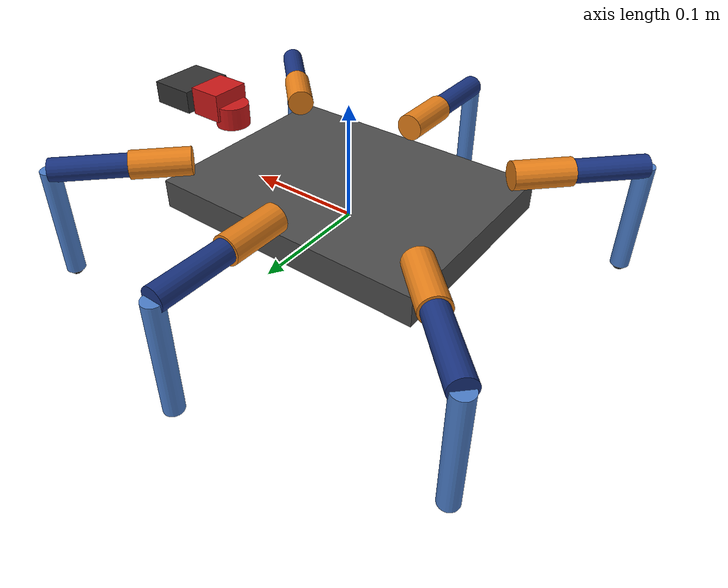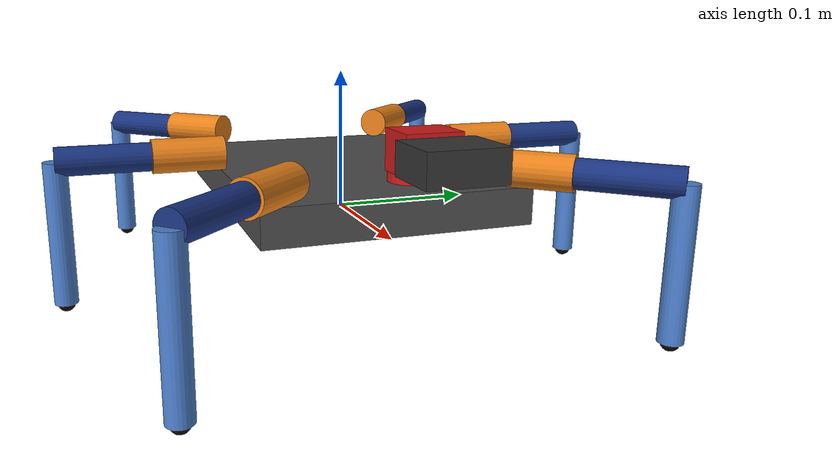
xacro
<?xml version="1.0"?>
<robot xmlns:xacro="http://www.ros.org/wiki/xacro" name="nox">

  <!-- Include sub-files -->
  <xacro:include filename="$(find rumblex_description)/urdf/materials.xacro"/>
  <xacro:include filename="$(find rumblex_description)/urdf/leg.xacro"/>
  <xacro:include filename="$(find rumblex_description)/urdf/ros2_control.xacro"/>

  <!-- ================================================================
       Robot dimensions from anatomy.yaml
       ================================================================ -->
  <xacro:property name="coxa_length"  value="0.050"/>
  <xacro:property name="femur_length" value="0.063"/>
  <xacro:property name="tibia_length" value="0.099"/>
  <xacro:property name="coxa_height"  value="0.045"/>

  <!-- Body visual approximation -->
  <xacro:property name="body_length"  value="0.240"/>
  <xacro:property name="body_width"   value="0.180"/>
  <xacro:property name="body_height"  value="0.025"/>
  <xacro:property name="body_mass"    value="0.400"/>

  <!-- ================================================================
       Gazebo plugin (for simulation with gz_ros2_control)
       ================================================================ -->
  <xacro:arg name="use_sim" default="false"/>

  <xacro:if value="$(arg use_sim)">
    <gazebo>
      <plugin filename="gz_ros2_control-system"
              name="gz_ros2_control::GazeboSimROS2ControlPlugin">
        <parameters>$(find rumblex_gazebo)/config/nox/joint_controllers.yaml</parameters>
      </plugin>
    </gazebo>
    <xacro:rumblex_ros2_control/>
  </xacro:if>

  <!-- ================================================================
       BASE LINK (body platform)
       ================================================================ -->
  <link name="base_link">
    <visual>
      <origin xyz="0 0 0.020" rpy="0 0 0"/>
      <geometry>
        <box size="${body_length} ${body_width} ${body_height}"/>
      </geometry>
      <material name="dark_gray"/>
    </visual>
    <collision>
      <origin xyz="0 0 0.020" rpy="0 0 0"/>
      <geometry>
        <box size="${body_length} ${body_width} ${body_height}"/>
      </geometry>
    </collision>
    <inertial>
      <origin xyz="0 0 0.020"/>
      <mass value="${body_mass}"/>
      <inertia ixx="${body_mass * (body_width*body_width + body_height*body_height) / 12}"
               ixy="0" ixz="0"
               iyy="${body_mass * (body_length*body_length + body_height*body_height) / 12}"
               iyz="0"
               izz="${body_mass * (body_length*body_length + body_width*body_width) / 12}"/>
    </inertial>
  </link>

  <gazebo reference="base_link">
    <material>
      <ambient>0.3 0.3 0.3 1</ambient>
      <diffuse>0.3 0.3 0.3 1</diffuse>
    </material>
  </gazebo>

  <!-- BNO055 IMU mounted on bottom plate, X-axis aligned with robot X -->
  <joint name="imu_joint" type="fixed">
    <parent link="base_link"/>
    <child link="imu_link"/>
    <origin xyz="0 0 0.0075" rpy="0 0 0"/>
  </joint>

  <link name="imu_link">
    <visual>
      <geometry>
        <box size="0.020 0.027 0.004"/>
      </geometry>
      <material name="dark_grey">
        <color rgba="0.15 0.15 0.15 1"/>
      </material>
    </visual>
    <collision>
      <geometry>
        <box size="0.020 0.027 0.004"/>
      </geometry>
    </collision>
    <inertial>
      <mass value="0.003"/>
      <inertia ixx="1.0e-07" ixy="0" ixz="0"
               iyy="1.0e-07" iyz="0"
               izz="1.0e-07"/>
    </inertial>
  </link>

  <gazebo reference="imu_link">
    <material>
      <ambient>0.15 0.15 0.15 1</ambient>
      <diffuse>0.15 0.15 0.15 1</diffuse>
    </material>
  </gazebo>

  <!-- Left side (+Y) -->
  <xacro:hexapod_leg prefix="left_front"
                     cx="0.109"  cy="0.068"  psi_deg="45.0"/>
  <xacro:hexapod_leg prefix="left_mid"
                     cx="0.000"  cy="0.088"  psi_deg="90.0"/>
  <xacro:hexapod_leg prefix="left_back"
                     cx="-0.109" cy="0.068"  psi_deg="135.0"/>

  <!-- Right side (-Y) -->
  <xacro:hexapod_leg prefix="right_front"
                     cx="0.109"  cy="-0.068" psi_deg="-45.0"/>
  <xacro:hexapod_leg prefix="right_mid"
                     cx="0.000"  cy="-0.088" psi_deg="-90.0"/>
  <xacro:hexapod_leg prefix="right_back"
                     cx="-0.109" cy="-0.068" psi_deg="-135.0"/>

  <!-- ================================================================
       HEAD (yaw + pitch)
       ================================================================ -->
  <joint name="head_yaw_joint" type="revolute">
    <parent link="base_link"/>
    <child link="head_yaw_link"/>
    <origin xyz="0.130 0 ${coxa_height}" rpy="0 0 0"/>
    <axis xyz="0 0 1"/>
    <limit lower="${-30 * pi / 180}" upper="${30 * pi / 180}"
           effort="1.5" velocity="4.0"/>
    <dynamics damping="0.05" friction="0.02"/>
  </joint>

  <link name="head_yaw_link">
    <visual>
      <origin xyz="0 0 0.010"/>
      <geometry>
        <cylinder radius="0.015" length="0.020"/>
      </geometry>
      <material name="red"/>
    </visual>
    <collision>
      <origin xyz="0 0 0.010"/>
      <geometry>
        <cylinder radius="0.015" length="0.020"/>
      </geometry>
    </collision>
    <inertial>
      <origin xyz="0 0 0.010"/>
      <mass value="0.025"/>
      <inertia ixx="1.5e-06" ixy="0" ixz="0"
               iyy="1.5e-06" iyz="0"
               izz="2.8e-06"/>
    </inertial>
  </link>

  <joint name="head_pitch_joint" type="revolute">
    <parent link="head_yaw_link"/>
    <child link="head_pitch_link"/>
    <origin xyz="0 0 0.020" rpy="0 0 0"/>
    <axis xyz="0 1 0"/>
    <limit lower="${-20 * pi / 180}" upper="${20 * pi / 180}"
           effort="1.5" velocity="4.0"/>
    <dynamics damping="0.05" friction="0.02"/>
  </joint>

  <link name="head_pitch_link">
    <visual>
      <origin xyz="0.015 0 0"/>
      <geometry>
        <box size="0.030 0.035 0.025"/>
      </geometry>
      <material name="red"/>
    </visual>
    <collision>
      <origin xyz="0.015 0 0"/>
      <geometry>
        <box size="0.030 0.035 0.025"/>
      </geometry>
    </collision>
    <inertial>
      <origin xyz="0.015 0 0"/>
      <mass value="0.025"/>
      <inertia ixx="5.0e-06" ixy="0" ixz="0"
               iyy="3.5e-06" iyz="0"
               izz="5.0e-06"/>
    </inertial>
  </link>

  <!-- Garmin LIDAR Lite v2 mounted on head, pointing forward (+X) -->
  <joint name="lidar_joint" type="fixed">
    <parent link="head_pitch_link"/>
    <child link="lidar_link"/>
    <origin xyz="0.030 0 0" rpy="0 0 0"/>
  </joint>

  <link name="lidar_link">
    <visual>
      <origin xyz="0.020 0 0"/>
      <geometry>
        <box size="0.040 0.048 0.020"/>
      </geometry>
      <material name="dark_grey">
        <color rgba="0.2 0.2 0.2 1"/>
      </material>
    </visual>
    <collision>
      <origin xyz="0.020 0 0"/>
      <geometry>
        <box size="0.040 0.048 0.020"/>
      </geometry>
    </collision>
    <inertial>
      <origin xyz="0.020 0 0"/>
      <mass value="0.022"/>
      <inertia ixx="2.0e-06" ixy="0" ixz="0"
               iyy="1.5e-06" iyz="0"
               izz="2.5e-06"/>
    </inertial>
  </link>

  <gazebo reference="lidar_link">
    <material>
      <ambient>0.2 0.2 0.2 1</ambient>
      <diffuse>0.2 0.2 0.2 1</diffuse>
    </material>
    <!-- Simulated 1-beam rangefinder (Garmin LIDAR Lite v3 equivalent) -->
    <xacro:if value="$(arg use_sim)">
      <sensor name="lidar_sensor" type="gpu_lidar">
        <pose>0 0 0 0 0 0</pose>
        <topic>lidar_scan</topic>
        <update_rate>10</update_rate>
        <always_on>true</always_on>
        <visualize>true</visualize>
        <ray>
          <scan>
            <horizontal>
              <samples>1</samples>
              <resolution>1</resolution>
              <min_angle>0</min_angle>
              <max_angle>0</max_angle>
            </horizontal>
          </scan>
          <range>
            <min>0.05</min>
            <max>40.0</max>
            <resolution>0.01</resolution>
          </range>
        </ray>
      </sensor>
    </xacro:if>
  </gazebo>

  <gazebo reference="head_yaw_link">
    <material>
      <ambient>0.8 0.1 0.1 1</ambient>
      <diffuse>0.8 0.1 0.1 1</diffuse>
    </material>
  </gazebo>
  <gazebo reference="head_pitch_link">
    <material>
      <ambient>0.8 0.1 0.1 1</ambient>
      <diffuse>0.8 0.1 0.1 1</diffuse>
    </material>
  </gazebo>

</robot>

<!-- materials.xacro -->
<robot xmlns:xacro="http://www.ros.org/wiki/xacro">

  <material name="dark_gray">
    <color rgba="0.3 0.3 0.3 1.0"/>
  </material>

  <material name="creamy_white">
    <color rgba="0.94 0.91 0.82 1.0"/>
  </material>

  <material name="orange">
    <color rgba="0.9 0.5 0.1 1.0"/>
  </material>

  <material name="dark_blue">
    <color rgba="0.1 0.2 0.5 1.0"/>
  </material>

  <material name="light_blue">
    <color rgba="0.3 0.5 0.8 1.0"/>
  </material>

  <material name="black">
    <color rgba="0.05 0.05 0.05 1.0"/>
  </material>

  <material name="red">
    <color rgba="0.8 0.1 0.1 1.0"/>
  </material>

</robot>

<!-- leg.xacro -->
<robot xmlns:xacro="http://www.ros.org/wiki/xacro">

  <xacro:macro name="hexapod_leg" params="prefix cx cy psi_deg">

    <!-- Derived values -->
    <xacro:property name="mount_yaw" value="${psi_deg * pi / 180.0 - pi / 2.0}"/>

    <!-- ================= COXA ================= -->
    <joint name="${prefix}_coxa_joint" type="revolute">
      <parent link="base_link"/>
      <child link="${prefix}_coxa_link"/>
      <origin xyz="${cx} ${cy} ${coxa_height}" rpy="0 0 ${mount_yaw}"/>
      <axis xyz="0 0 -1"/>
      <limit lower="${-60 * pi / 180}" upper="${60 * pi / 180}"
             effort="3.0" velocity="6.0"/>
      <dynamics damping="0.1" friction="0.05"/>
    </joint>

    <link name="${prefix}_coxa_link">
      <visual>
        <origin xyz="0 ${coxa_length / 2.0} 0" rpy="${-pi / 2.0} 0 0"/>
        <geometry>
          <cylinder radius="0.012" length="${coxa_length}"/>
        </geometry>
        <material name="orange"/>
      </visual>
      <collision>
        <origin xyz="0 ${coxa_length / 2.0} 0" rpy="${-pi / 2.0} 0 0"/>
        <geometry>
          <cylinder radius="0.012" length="${coxa_length}"/>
        </geometry>
      </collision>
      <inertial>
        <origin xyz="0 ${coxa_length / 2.0} 0"/>
        <mass value="0.025"/>
        <inertia ixx="6.0e-06" ixy="0" ixz="0"
                 iyy="1.8e-06" iyz="0"
                 izz="6.0e-06"/>
      </inertial>
    </link>

    <!-- ================= FEMUR ================= -->
    <joint name="${prefix}_femur_joint" type="revolute">
      <parent link="${prefix}_coxa_link"/>
      <child link="${prefix}_femur_link"/>
      <origin xyz="0 ${coxa_length} 0" rpy="0 0 0"/>
      <axis xyz="1 0 0"/>
      <limit lower="${-30 * pi / 180}" upper="${90 * pi / 180}"
             effort="3.0" velocity="6.0"/>
      <dynamics damping="0.1" friction="0.05"/>
    </joint>

    <link name="${prefix}_femur_link">
      <visual>
        <origin xyz="0 ${femur_length / 2.0} 0" rpy="${-pi / 2.0} 0 0"/>
        <geometry>
          <cylinder radius="0.010" length="${femur_length}"/>
        </geometry>
        <material name="dark_blue"/>
      </visual>
      <collision>
        <origin xyz="0 ${femur_length / 2.0} 0" rpy="${-pi / 2.0} 0 0"/>
        <geometry>
          <cylinder radius="0.010" length="${femur_length}"/>
        </geometry>
      </collision>
      <inertial>
        <origin xyz="0 ${femur_length / 2.0} 0"/>
        <mass value="0.025"/>
        <inertia ixx="1.0e-05" ixy="0" ixz="0"
                 iyy="1.5e-06" iyz="0"
                 izz="1.0e-05"/>
      </inertial>
    </link>

    <!-- ================= TIBIA ================= -->
    <joint name="${prefix}_tibia_joint" type="revolute">
      <parent link="${prefix}_femur_link"/>
      <child link="${prefix}_tibia_link"/>
      <origin xyz="0 ${femur_length} 0" rpy="${-pi / 2.0} 0 0"/>
      <axis xyz="1 0 0"/>
      <limit lower="${-90 * pi / 180}" upper="${90 * pi / 180}"
             effort="3.0" velocity="6.0"/>
      <dynamics damping="0.1" friction="0.05"/>
    </joint>

    <link name="${prefix}_tibia_link">
      <visual>
        <origin xyz="0 ${tibia_length / 2.0} 0" rpy="${-pi / 2.0} 0 0"/>
        <geometry>
          <cylinder radius="0.008" length="${tibia_length}"/>
        </geometry>
        <material name="light_blue"/>
      </visual>
      <collision>
        <origin xyz="0 ${tibia_length / 2.0} 0" rpy="${-pi / 2.0} 0 0"/>
        <geometry>
          <cylinder radius="0.008" length="${tibia_length}"/>
        </geometry>
      </collision>
      <inertial>
        <origin xyz="0 ${tibia_length / 2.0} 0"/>
        <mass value="0.015"/>
        <inertia ixx="1.3e-05" ixy="0" ixz="0"
                 iyy="4.8e-07" iyz="0"
                 izz="1.3e-05"/>
      </inertial>
    </link>

    <!-- ================= FOOT (fixed) ================= -->
    <joint name="${prefix}_foot_joint" type="fixed">
      <parent link="${prefix}_tibia_link"/>
      <child link="${prefix}_foot"/>
      <origin xyz="0 ${tibia_length} 0" rpy="0 0 0"/>
    </joint>

    <link name="${prefix}_foot">
      <visual>
        <geometry>
          <sphere radius="0.006"/>
        </geometry>
        <material name="black"/>
      </visual>
      <collision>
        <geometry>
          <sphere radius="0.006"/>
        </geometry>
      </collision>
      <inertial>
        <mass value="0.005"/>
        <inertia ixx="7.2e-08" ixy="0" ixz="0"
                 iyy="7.2e-08" iyz="0"
                 izz="7.2e-08"/>
      </inertial>
    </link>

    <!-- Gazebo material colors -->
    <gazebo reference="${prefix}_coxa_link">
      <material>
        <ambient>0.9 0.5 0.1 1</ambient>
        <diffuse>0.9 0.5 0.1 1</diffuse>
      </material>
    </gazebo>
    <gazebo reference="${prefix}_femur_link">
      <material>
        <ambient>0.1 0.2 0.5 1</ambient>
        <diffuse>0.1 0.2 0.5 1</diffuse>
      </material>
    </gazebo>
    <gazebo reference="${prefix}_tibia_link">
      <material>
        <ambient>0.3 0.5 0.8 1</ambient>
        <diffuse>0.3 0.5 0.8 1</diffuse>
      </material>
    </gazebo>
    <gazebo reference="${prefix}_foot">
      <material>
        <ambient>0.05 0.05 0.05 1</ambient>
        <diffuse>0.05 0.05 0.05 1</diffuse>
      </material>
      <mu1>1.0</mu1>
      <mu2>1.0</mu2>
    </gazebo>

  </xacro:macro>
</robot>
